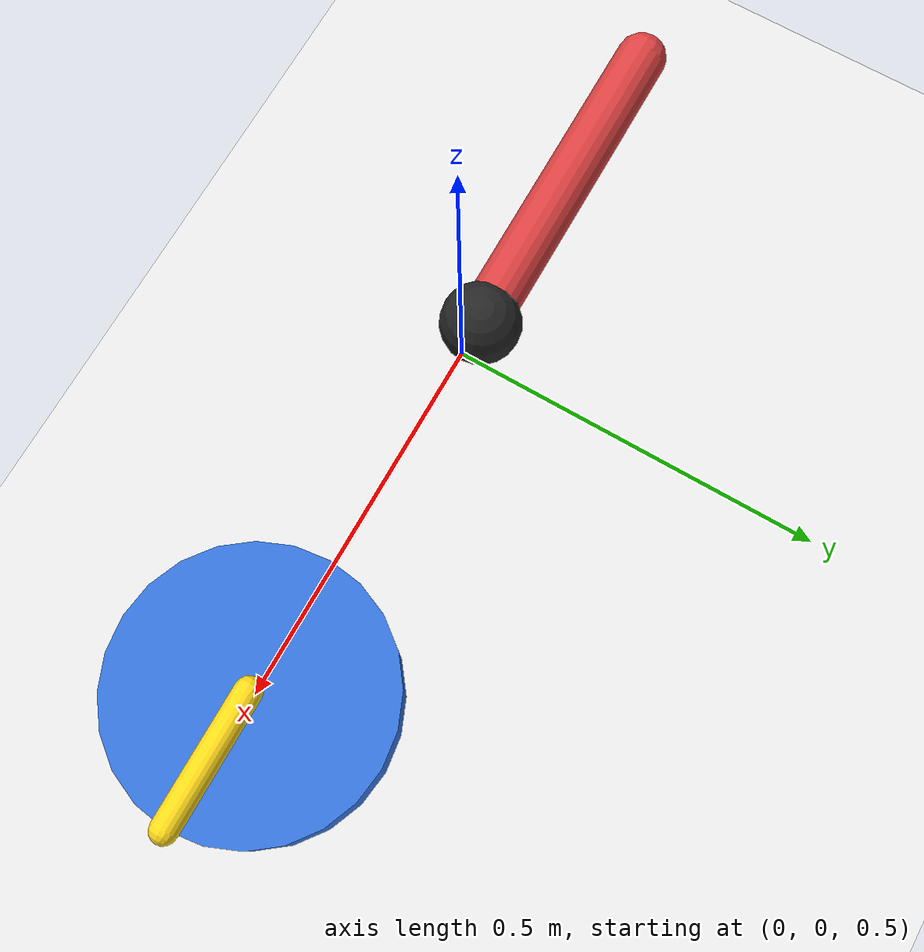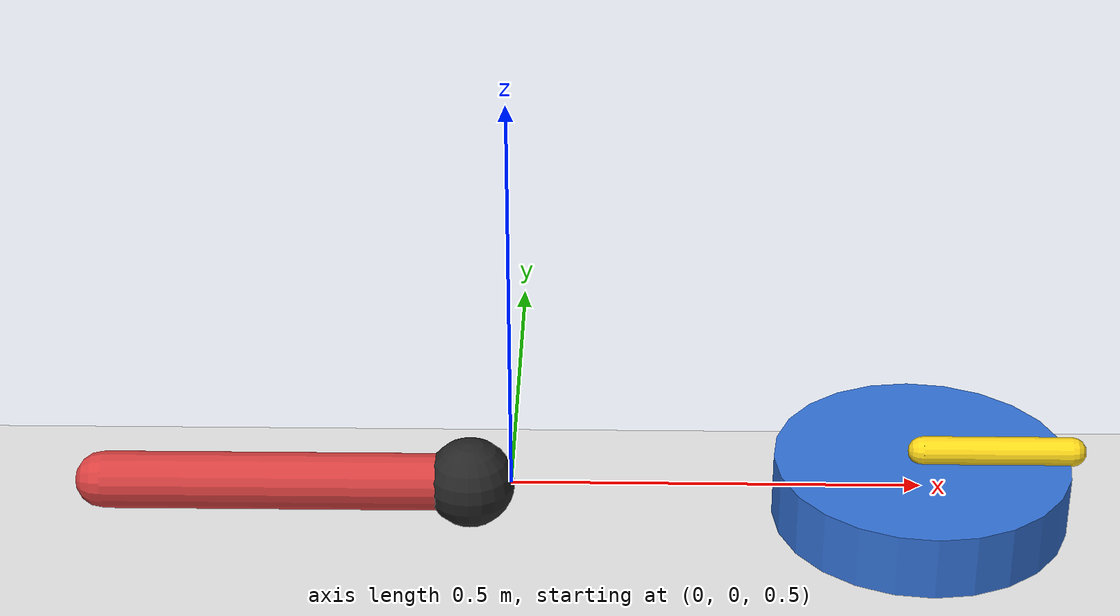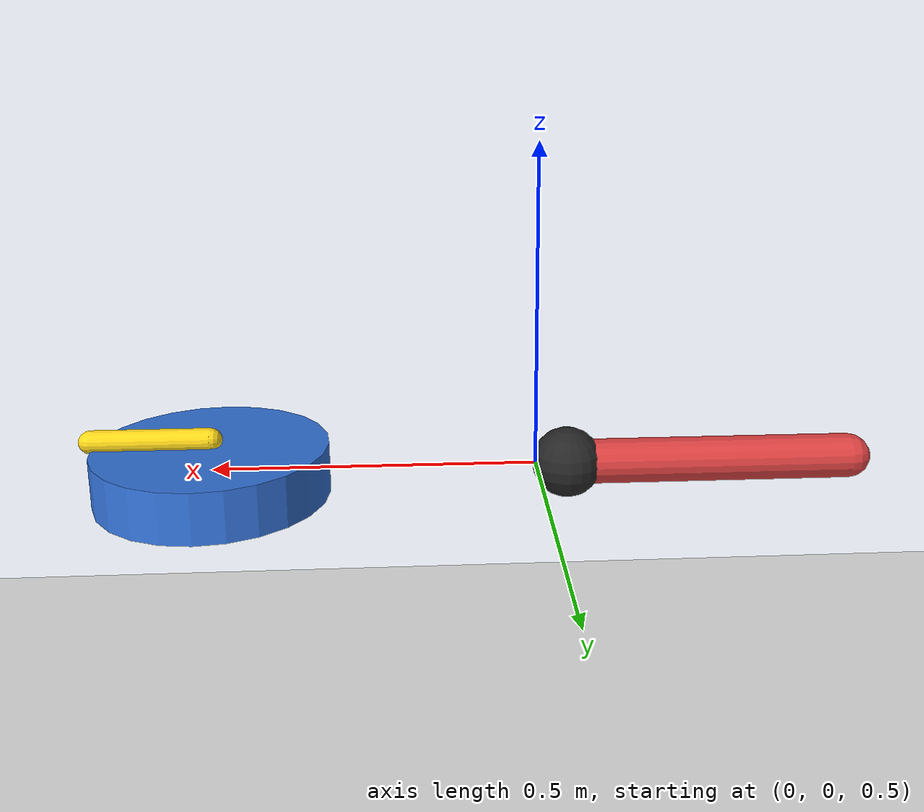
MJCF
<mujoco model="position_velocity_actuator_sample">
  <compiler angle="radian"/>
  <option timestep="0.002" gravity="0 0 -9.81"/>

  <default>
    <joint damping="0.02" armature="0.02"/>
    <geom rgba="0.45 0.45 0.45 1"/>
  </default>

  <worldbody>
    <light pos="0 -3 4" dir="0 1 -1"/>
    <geom name="ground" type="plane" size="2 2 0.02" rgba="0.9 0.9 0.9 1"/>

    <body name="position_demo" pos="-0.5 0 0.5">
      <joint name="position_hinge" type="hinge" axis="0 0 1" limited="true" range="-1.0 1.0"/>
      <geom name="position_arm" type="capsule" fromto="0 0 0 0.45 0 0" size="0.035" rgba="0.85 0.25 0.25 1"/>
      <geom name="position_tip" type="sphere" pos="0.45 0 0" size="0.055" rgba="0.15 0.15 0.15 1"/>
    </body>

    <body name="velocity_demo" pos="0.5 0 0.5">
      <joint name="velocity_hinge" type="hinge" axis="0 0 1"/>
      <geom name="velocity_wheel" type="cylinder" size="0.18 0.04" rgba="0.2 0.45 0.85 1"/>
      <geom name="velocity_marker" type="capsule" fromto="0 0 0.05 0.18 0 0.05" size="0.018" rgba="1.0 0.85 0.1 1"/>
    </body>
  </worldbody>

  <actuator>
    <position name="position_servo" joint="position_hinge" kp="6" dampratio="1.0" ctrllimited="true" ctrlrange="-0.8 0.8"/>
    <velocity name="velocity_servo" joint="velocity_hinge" kv="3" ctrllimited="true" ctrlrange="-4.0 4.0"/>
  </actuator>
</mujoco>
